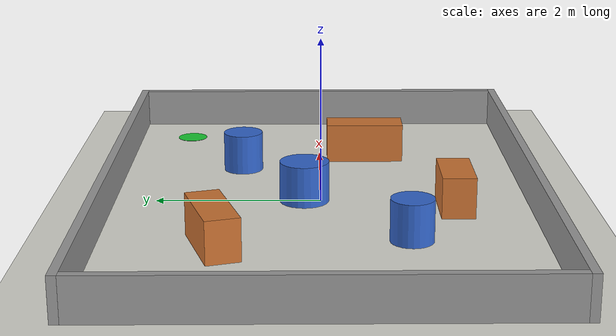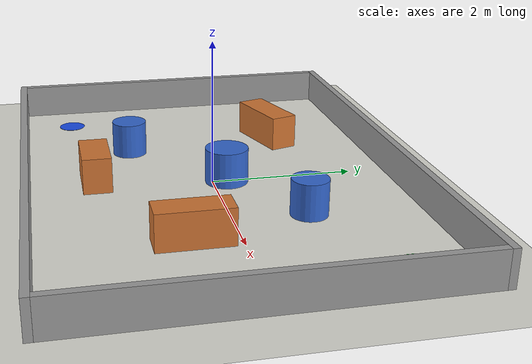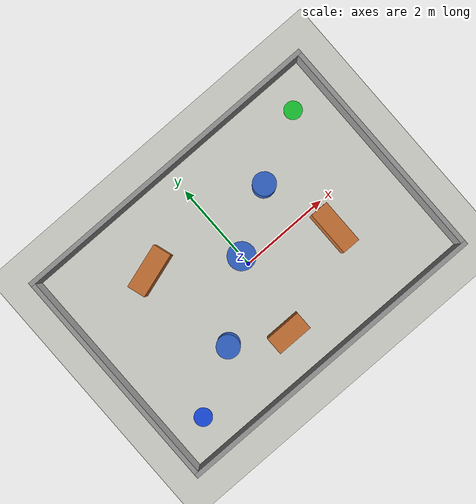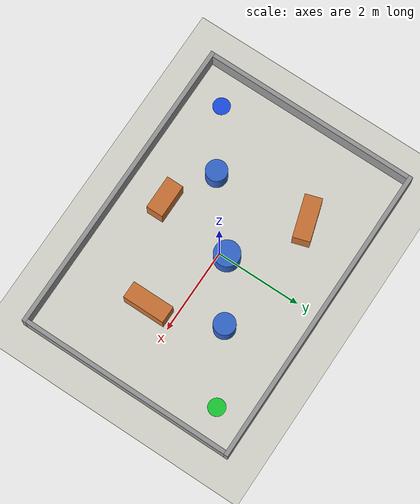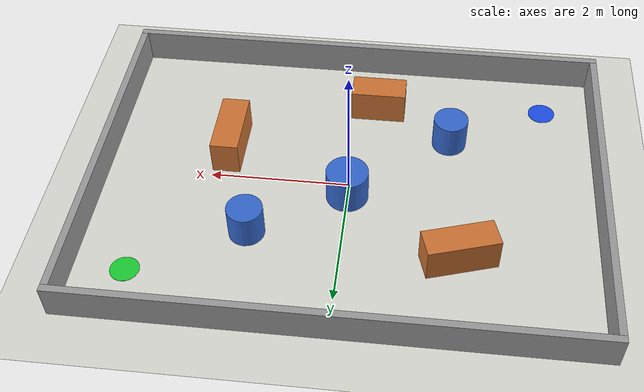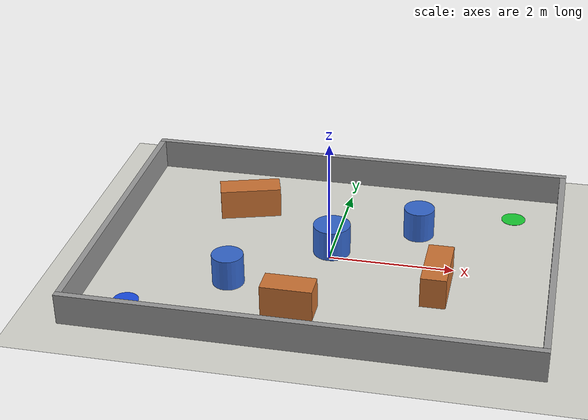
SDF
<?xml version="1.0"?>
<!-- AUTO-GENERATED by tb3_nav_task/worlds.py (open_field): Sparse field: 3 pillars + 3 blocks, straight line to goal blocked 3 times. Edit the Python spec, not this file. -->
<sdf version="1.8">
  <world name="open_field">
    <physics name="default_physics" type="dart">
      <max_step_size>0.002</max_step_size>
      <real_time_factor>1.0</real_time_factor>
      <real_time_update_rate>500</real_time_update_rate>
    </physics>
    <plugin filename="gz-sim-physics-system" name="gz::sim::systems::Physics"/>
    <plugin filename="gz-sim-user-commands-system" name="gz::sim::systems::UserCommands"/>
    <plugin filename="gz-sim-scene-broadcaster-system" name="gz::sim::systems::SceneBroadcaster"/>
    <plugin filename="gz-sim-sensors-system" name="gz::sim::systems::Sensors">
      <render_engine>ogre2</render_engine>
    </plugin>
    <plugin filename="gz-sim-imu-system" name="gz::sim::systems::Imu"/>
    <scene>
      <ambient>0.6 0.6 0.6 1</ambient>
      <background>0.75 0.8 0.9 1</background>
      <shadows>false</shadows>
    </scene>
    <light type="directional" name="sun">
      <cast_shadows>false</cast_shadows>
      <pose>0 0 10 0 0 0</pose>
      <diffuse>0.9 0.9 0.9 1</diffuse>
      <specular>0.2 0.2 0.2 1</specular>
      <direction>-0.3 0.2 -0.9</direction>
    </light>
    <model name="ground_plane">
      <static>true</static>
      <link name="link">
        <collision name="c"><geometry><plane><normal>0 0 1</normal><size>20 20</size></plane></geometry></collision>
        <visual name="v"><geometry><plane><normal>0 0 1</normal><size>20 20</size></plane></geometry><material><ambient>0.85 0.85 0.82 1</ambient><diffuse>0.85 0.85 0.82 1</diffuse><specular>0.1 0.1 0.1 1</specular></material></visual>
      </link>
    </model>
    <model name="wall_north"><static>true</static><pose>0.0 2.55 0.25 0 0 0.0</pose><link name="link"><collision name="c"><geometry><box><size>7.2 0.1 0.5</size></box></geometry></collision><visual name="v"><geometry><box><size>7.2 0.1 0.5</size></box></geometry><material><ambient>0.6 0.6 0.6 1</ambient><diffuse>0.6 0.6 0.6 1</diffuse><specular>0.1 0.1 0.1 1</specular></material></visual></link></model>
    <model name="wall_south"><static>true</static><pose>0.0 -2.55 0.25 0 0 0.0</pose><link name="link"><collision name="c"><geometry><box><size>7.2 0.1 0.5</size></box></geometry></collision><visual name="v"><geometry><box><size>7.2 0.1 0.5</size></box></geometry><material><ambient>0.6 0.6 0.6 1</ambient><diffuse>0.6 0.6 0.6 1</diffuse><specular>0.1 0.1 0.1 1</specular></material></visual></link></model>
    <model name="wall_east"><static>true</static><pose>3.55 0.0 0.25 0 0 0.0</pose><link name="link"><collision name="c"><geometry><box><size>0.1 5.0 0.5</size></box></geometry></collision><visual name="v"><geometry><box><size>0.1 5.0 0.5</size></box></geometry><material><ambient>0.6 0.6 0.6 1</ambient><diffuse>0.6 0.6 0.6 1</diffuse><specular>0.1 0.1 0.1 1</specular></material></visual></link></model>
    <model name="wall_west"><static>true</static><pose>-3.55 0.0 0.25 0 0 0.0</pose><link name="link"><collision name="c"><geometry><box><size>0.1 5.0 0.5</size></box></geometry></collision><visual name="v"><geometry><box><size>0.1 5.0 0.5</size></box></geometry><material><ambient>0.6 0.6 0.6 1</ambient><diffuse>0.6 0.6 0.6 1</diffuse><specular>0.1 0.1 0.1 1</specular></material></visual></link></model>
    <model name="pillar_1"><static>true</static><pose>-1.4 -1.0 0.25 0 0 0</pose><link name="link"><collision name="c"><geometry><cylinder><radius>0.25</radius><length>0.5</length></cylinder></geometry></collision><visual name="v"><geometry><cylinder><radius>0.25</radius><length>0.5</length></cylinder></geometry><material><ambient>0.2 0.4 0.8 1</ambient><diffuse>0.2 0.4 0.8 1</diffuse><specular>0.1 0.1 0.1 1</specular></material></visual></link></model>
    <model name="pillar_2"><static>true</static><pose>0.0 0.2 0.25 0 0 0</pose><link name="link"><collision name="c"><geometry><cylinder><radius>0.3</radius><length>0.5</length></cylinder></geometry></collision><visual name="v"><geometry><cylinder><radius>0.3</radius><length>0.5</length></cylinder></geometry><material><ambient>0.2 0.4 0.8 1</ambient><diffuse>0.2 0.4 0.8 1</diffuse><specular>0.1 0.1 0.1 1</specular></material></visual></link></model>
    <model name="pillar_3"><static>true</static><pose>1.3 1.0 0.25 0 0 0</pose><link name="link"><collision name="c"><geometry><cylinder><radius>0.25</radius><length>0.5</length></cylinder></geometry></collision><visual name="v"><geometry><cylinder><radius>0.25</radius><length>0.5</length></cylinder></geometry><material><ambient>0.2 0.4 0.8 1</ambient><diffuse>0.2 0.4 0.8 1</diffuse><specular>0.1 0.1 0.1 1</specular></material></visual></link></model>
    <model name="block_1"><static>true</static><pose>-0.3 -1.6 0.25 0 0 0.0</pose><link name="link"><collision name="c"><geometry><box><size>0.8 0.4 0.5</size></box></geometry></collision><visual name="v"><geometry><box><size>0.8 0.4 0.5</size></box></geometry><material><ambient>0.8 0.45 0.2 1</ambient><diffuse>0.8 0.45 0.2 1</diffuse><specular>0.1 0.1 0.1 1</specular></material></visual></link></model>
    <model name="block_2"><static>true</static><pose>1.8 -0.6 0.25 0 0 0.0</pose><link name="link"><collision name="c"><geometry><box><size>0.4 1.0 0.5</size></box></geometry></collision><visual name="v"><geometry><box><size>0.4 1.0 0.5</size></box></geometry><material><ambient>0.8 0.45 0.2 1</ambient><diffuse>0.8 0.45 0.2 1</diffuse><specular>0.1 0.1 0.1 1</specular></material></visual></link></model>
    <model name="block_3"><static>true</static><pose>-1.6 1.2 0.25 0 0 0.3</pose><link name="link"><collision name="c"><geometry><box><size>1.0 0.4 0.5</size></box></geometry></collision><visual name="v"><geometry><box><size>1.0 0.4 0.5</size></box></geometry><material><ambient>0.8 0.45 0.2 1</ambient><diffuse>0.8 0.45 0.2 1</diffuse><specular>0.1 0.1 0.1 1</specular></material></visual></link></model>
    <model name="start_marker"><static>true</static><pose>-2.8 -1.8 0.002 0 0 0</pose><link name="link"><visual name="v"><geometry><cylinder><radius>0.2</radius><length>0.004</length></cylinder></geometry><material><ambient>0.1 0.3 0.9 1</ambient><diffuse>0.1 0.3 0.9 1</diffuse><specular>0.1 0.1 0.1 1</specular></material><cast_shadows>false</cast_shadows></visual></link></model>
    <model name="goal_marker"><static>true</static><pose>2.8 1.8 0.002 0 0 0</pose><link name="link"><visual name="v"><geometry><cylinder><radius>0.2</radius><length>0.004</length></cylinder></geometry><material><ambient>0.1 0.8 0.2 1</ambient><diffuse>0.1 0.8 0.2 1</diffuse><specular>0.1 0.1 0.1 1</specular></material><cast_shadows>false</cast_shadows></visual></link></model>
  </world>
</sdf>
